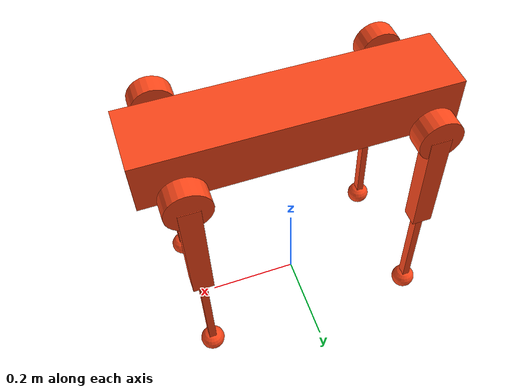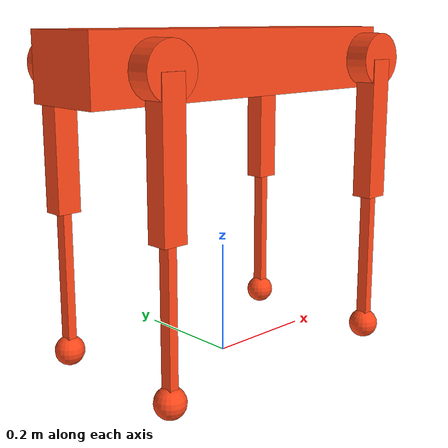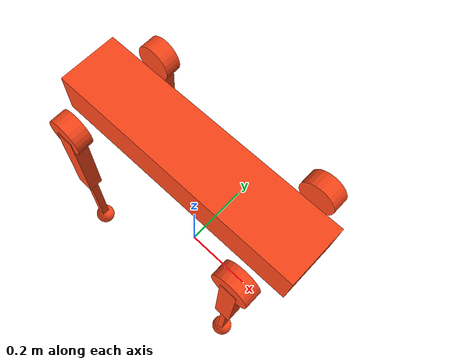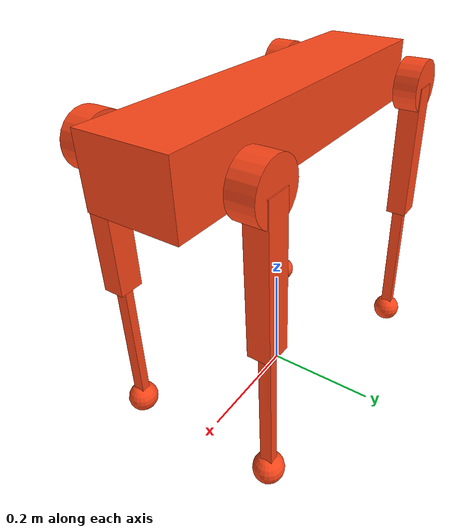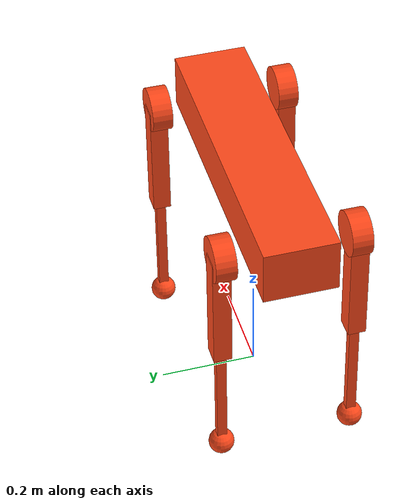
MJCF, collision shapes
<mujoco model="aliengo">
    <compiler angle="radian" meshdir="assets" autolimits="true" />

    <option timestep="0.002" integrator="implicitfast" cone="elliptic" impratio="100" />

    <default>
        <default class="aliengo">
            <geom friction="0.6" margin="0.001" condim="1" />
            <joint axis="0 1 0" damping="0" armature="0.01" frictionloss="0.1" />
            <default class="abduction">
                <joint axis="1 0 0" range="-1.2217304763960306 1.2217304763960306" />
            </default>
            <default class="hip">
                <joint range="-2.0943951023931953 4.1887902047863905" />
            </default>
            <default class="knee">
                <joint range="-2.775073510670984 -0.6457718232379019" />
            </default>
            <default class="visual">
                <geom type="mesh" contype="0" conaffinity="0" group="2" />
            </default>
            <default class="collision">
                <geom group="3" contype="0" conaffinity="1" condim="1" margin="0"
                    solref="0.005 1" solimp="0.9 0.95 0.001" friction="0.6 0.02 0.01"
                    material="collision_material" />
                <default class="hip_l">
                    <geom type="cylinder" size="0.046 0.0209" pos="0 0.083 0" quat="1 1 0 0" />
                </default>
                <default class="hip_r">
                    <geom type="cylinder" size="0.046 0.0209" pos="0 -0.083 0" quat="1 1 0 0" />
                </default>
                <default class="thigh">
                    <geom type="box" size="0.125 0.0187 0.0215" pos="0 0 -0.125" quat="1 0 1 0" />
                </default>
                <default class="calf">
                    <geom type="box" size="0.125 0.0104 0.008" pos="0 0 -0.125" quat="1 0 1 0" />
                </default>
                <default class="foot">
                    <geom type="sphere" size="0.0265" condim="6" priority="1" />
                </default>
            </default>
        </default>
    </default>

    <asset>
        <material name="collision_material" rgba="1.0 0.28 0.1 0.9" />
        <material name="carbon" rgba="0.18 0.18 0.18 1.0" specular="0.2" shininess="0.3" />
        <material name="leg_grey" rgba="0.4 0.4 0.4 1.0" specular="0.3" shininess="0.4" />
        <material name="calf_grey" rgba="0.251 0.251 0.251 1.0" specular="0.2" shininess="0.3" />
        <material name="foot_black" rgba="0.05 0.05 0.05 1.0" specular="0.1" shininess="0.2" />
        <mesh file="trunk.obj" />
        <mesh file="hip.obj" />
        <mesh file="thigh.obj" />
        <mesh file="thigh_mirror.obj" />
        <mesh file="calf.obj" />
    </asset>

    <worldbody>
        <body name="trunk" pos="0 0 0.5265" childclass="aliengo">
            <light name="spotlight" mode="targetbodycom" target="trunk" pos="0 -1 2" />
            <camera name="tracking" mode="fixed" pos="-1 0 0.5" xyaxes="0 -1 0 0.6 0 1" fovy="60" />
            <site name="imu" pos="0 0 0" group="5" />
            <inertial pos="0.008811 0.003839 0.000273" mass="11.644"
                diaginertia="0.051944892 0.24693924 0.270948307" />
            <freejoint name="floating_base" />
            <geom class="visual" material="carbon" mesh="trunk" />
            <geom name="trunk_collision" class="collision" type="box" size="0.3235 0.075 0.056" />

            <body name="FR_hip" pos="0.2407 -0.051 0">
                <inertial pos="-0.022191 -0.015144 -1.5e-05" mass="1.993"
                    diaginertia="0.002446735 0.003925876 0.004148145" />
                <joint class="abduction" name="FR_hip_joint" />
                <geom class="visual" material="leg_grey" mesh="hip"
                    quat="6.123233995736766e-17 1 0 0" />
                <geom class="hip_r" />
                <body name="FR_thigh" pos="0 -0.0868 0">
                    <inertial pos="-0.005607 0.003877 -0.048199" mass="0.639"
                        diaginertia="0.004173855 0.004343802 0.000340136" />
                    <joint class="hip" name="FR_thigh_joint" />
                    <geom class="visual" material="leg_grey" mesh="thigh_mirror" />
                    <geom name="FR_thigh_collision" class="thigh" />
                    <body name="FR_calf" pos="0 0 -0.25">
                        <inertial pos="0.002781 6.3e-05 -0.142518" mass="0.207"
                            diaginertia="0.002129279 0.002141463 3.7583e-05" />
                        <joint class="knee" name="FR_calf_joint" />
                        <geom class="visual" material="calf_grey" mesh="calf" />
                        <geom name="FR_calf_collision" class="calf" />
                        <body name="FR_foot" pos="0 0 -0.25">
                            <inertial pos="0 0 0" mass="0.06"
                                diaginertia="1.6854e-05 1.6854e-05 1.6854e-05" />
                            <geom name="FR_foot_collision" class="foot" />
                            <geom class="visual" material="foot_black" type="sphere" size="0.0165" />
                            <site name="FR" pos="0 0 0" type="sphere" size="0.0265" group="5" />
                        </body>
                    </body>
                </body>
            </body>

            <body name="FL_hip" pos="0.2407 0.051 0">
                <inertial pos="-0.022191 0.015144 -1.5e-05" mass="1.993"
                    diaginertia="0.002446735 0.003925876 0.004148145" />
                <joint class="abduction" name="FL_hip_joint" />
                <geom class="visual" material="leg_grey" mesh="hip" />
                <geom class="hip_l" />
                <body name="FL_thigh" pos="0 0.0868 0">
                    <inertial pos="-0.005607 -0.003877 -0.048199" mass="0.639"
                        diaginertia="0.004173855 0.004343802 0.000340136" />
                    <joint class="hip" name="FL_thigh_joint" />
                    <geom class="visual" material="leg_grey" mesh="thigh" />
                    <geom name="FL_thigh_collision" class="thigh" />
                    <body name="FL_calf" pos="0 0 -0.25">
                        <inertial pos="0.002781 6.3e-05 -0.142518" mass="0.207"
                            diaginertia="0.002129279 0.002141463 3.7583e-05" />
                        <joint class="knee" name="FL_calf_joint" />
                        <geom class="visual" material="calf_grey" mesh="calf" />
                        <geom name="FL_calf_collision" class="calf" />
                        <body name="FL_foot" pos="0 0 -0.25">
                            <inertial pos="0 0 0" mass="0.06"
                                diaginertia="1.6854e-05 1.6854e-05 1.6854e-05" />
                            <geom name="FL_foot_collision" class="foot" />
                            <geom class="visual" material="foot_black" type="sphere" size="0.0165" />
                            <site name="FL" pos="0 0 0" type="sphere" size="0.0265" group="5" />
                        </body>
                    </body>
                </body>
            </body>

            <body name="RR_hip" pos="-0.2407 -0.051 0">
                <inertial pos="0.022191 -0.015144 -1.5e-05" mass="1.993"
                    diaginertia="0.002446735 0.003925876 0.004148145" />
                <joint class="abduction" name="RR_hip_joint" />
                <geom class="visual" material="leg_grey" mesh="hip"
                    quat="3.749399456654644e-33 6.123233995736766e-17 6.123233995736766e-17 -1" />
                <geom class="hip_r" />
                <body name="RR_thigh" pos="0 -0.0868 0">
                    <inertial pos="-0.005607 0.003877 -0.048199" mass="0.639"
                        diaginertia="0.004173855 0.004343802 0.000340136" />
                    <joint class="hip" name="RR_thigh_joint" />
                    <geom class="visual" material="leg_grey" mesh="thigh_mirror" />
                    <geom name="RR_thigh_collision" class="thigh" />
                    <body name="RR_calf" pos="0 0 -0.25">
                        <inertial pos="0.002781 6.3e-05 -0.142518" mass="0.207"
                            diaginertia="0.002129279 0.002141463 3.7583e-05" />
                        <joint class="knee" name="RR_calf_joint" />
                        <geom class="visual" material="calf_grey" mesh="calf" />
                        <geom name="RR_calf_collision" class="calf" />
                        <body name="RR_foot" pos="0 0 -0.25">
                            <inertial pos="0 0 0" mass="0.06"
                                diaginertia="1.6854e-05 1.6854e-05 1.6854e-05" />
                            <geom name="RR_foot_collision" class="foot" />
                            <geom class="visual" material="foot_black" type="sphere" size="0.0165" />
                            <site name="RR" pos="0 0 0" type="sphere" size="0.0265" group="5" />
                        </body>
                    </body>
                </body>
            </body>

            <body name="RL_hip" pos="-0.2407 0.051 0">
                <inertial pos="0.022191 0.015144 -1.5e-05" mass="1.993"
                    diaginertia="0.002446735 0.003925876 0.004148145" />
                <joint class="abduction" name="RL_hip_joint" />
                <geom class="visual" material="leg_grey" mesh="hip"
                    quat="6.123233995736766e-17 0 1 0" />
                <geom class="hip_l" />
                <body name="RL_thigh" pos="0 0.0868 0">
                    <inertial pos="-0.005607 -0.003877 -0.048199" mass="0.639"
                        diaginertia="0.004173855 0.004343802 0.000340136" />
                    <joint class="hip" name="RL_thigh_joint" />
                    <geom class="visual" material="leg_grey" mesh="thigh" />
                    <geom name="RL_thigh_collision" class="thigh" />
                    <body name="RL_calf" pos="0 0 -0.25">
                        <inertial pos="0.002781 6.3e-05 -0.142518" mass="0.207"
                            diaginertia="0.002129279 0.002141463 3.7583e-05" />
                        <joint class="knee" name="RL_calf_joint" />
                        <geom class="visual" material="calf_grey" mesh="calf" />
                        <geom name="RL_calf_collision" class="calf" />
                        <body name="RL_foot" pos="0 0 -0.25">
                            <inertial pos="0 0 0" mass="0.06"
                                diaginertia="1.6854e-05 1.6854e-05 1.6854e-05" />
                            <geom name="RL_foot_collision" class="foot" />
                            <geom class="visual" material="foot_black" type="sphere" size="0.0165" />
                            <site name="RL" pos="0 0 0" type="sphere" size="0.0265" group="5" />
                        </body>
                    </body>
                </body>
            </body>
        </body>
    </worldbody>

    <sensor>
        <gyro name="imu_ang_vel" site="imu" />
        <velocimeter name="imu_lin_vel" site="imu" />
        <accelerometer name="imu_lin_acc" site="imu" />
        <framezaxis name="imu_upvector" objtype="body" objname="world" reftype="site" refname="imu" />
        <subtreeangmom name="root_angmom" body="trunk" />
    </sensor>
</mujoco>
